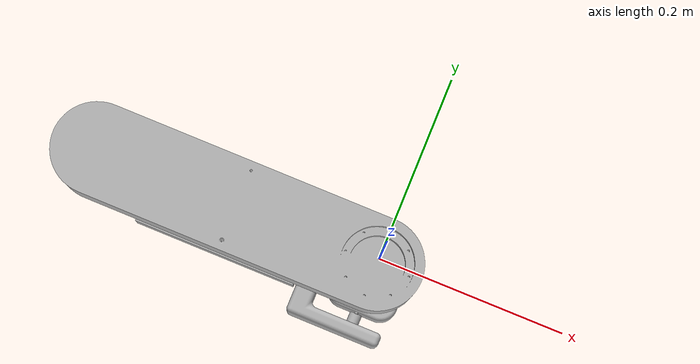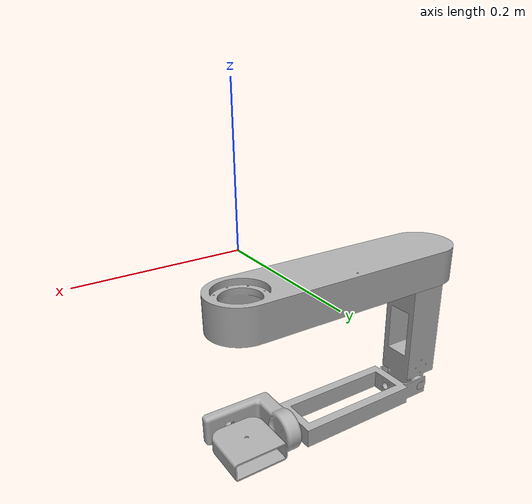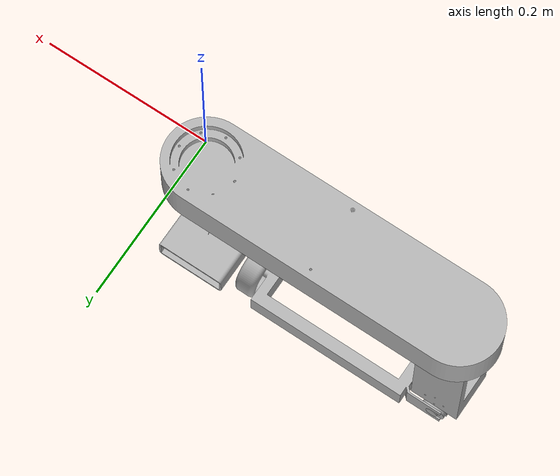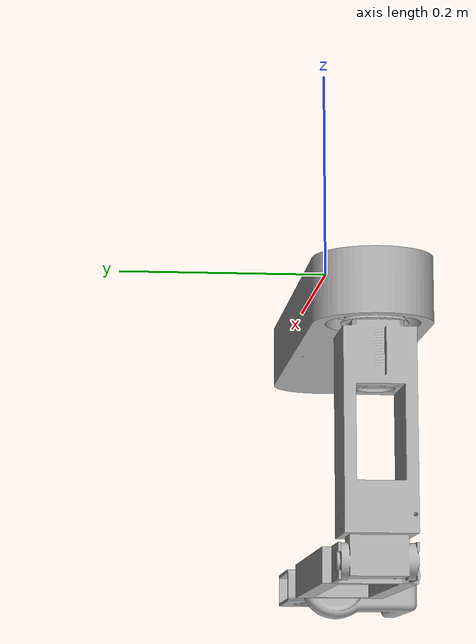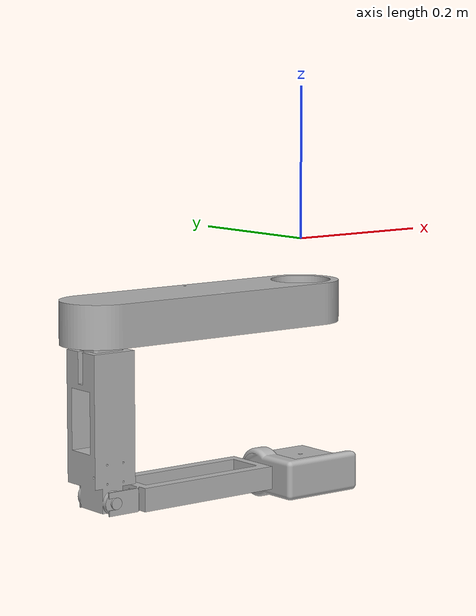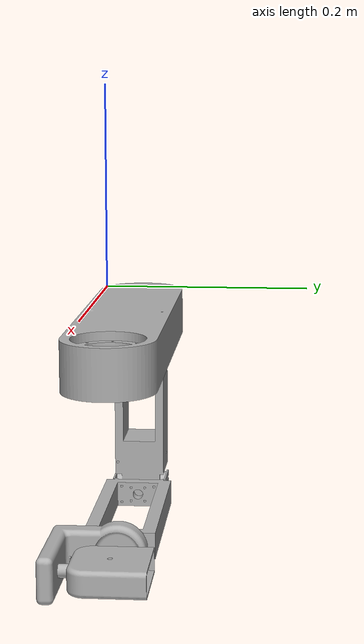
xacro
<?xml version="1.0"?>
<robot xmlns:xacro="http://www.ros.org/wiki/xacro" name="surg_bot">
    <xacro:arg name="initial_positions_file" default="initial_positions.yaml" />

    <!-- Import surg_bot urdf file -->
    <xacro:include filename="$(find surg_bot_description)/urdf/surg_bot.xacro" />

    <!-- Import control_xacro -->
    <xacro:include filename="surg_bot.ros2_control.xacro" />

    <xacro:surg_bot_ros2_control name="FakeSystem" initial_positions_file="$(arg initial_positions_file)"/>

</robot>

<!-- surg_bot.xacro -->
<robot name="surg_bot" xmlns:xacro="http://www.ros.org/wiki/xacro">

<xacro:include filename="$(find surg_bot_description)/urdf/materials.xacro" />
<xacro:include filename="$(find surg_bot_description)/urdf/surg_bot.trans" />
<xacro:include filename="$(find surg_bot_description)/urdf/surg_bot.gazebo" />
<link name="base_link">
  <inertial>
    <origin xyz="-4.031295976229773e-05 2.551630137478745e-06 -0.02955399218078996" rpy="0 0 0"/>
    <mass value="0.4069489619511855"/>
    <inertia ixx="0.000314" iyy="0.000315" izz="0.000167" ixy="-0.0" iyz="0.0" ixz="0.0"/>
  </inertial>
  <visual>
    <origin xyz="0 0 0" rpy="0 0 0"/>
    <geometry>
      <mesh filename="file://$(find surg_bot_description)/meshes/base_link.stl" scale="0.001 0.001 0.001"/>
    </geometry>
    <material name="silver"/>
  </visual>
  <collision>
    <origin xyz="0 0 0" rpy="0 0 0"/>
    <geometry>
      <mesh filename="file://$(find surg_bot_description)/meshes/base_link.stl" scale="0.001 0.001 0.001"/>
    </geometry>
  </collision>
</link>

<link name="link1_1_1">
  <inertial>
    <origin xyz="-0.16001007717101143 -1.5433885540422345e-05 -0.01760775000004948" rpy="0 0 0"/>
    <mass value="8.367890341080868"/>
    <inertia ixx="0.012225" iyy="0.118361" izz="0.124365" ixy="0.0" iyz="0.0" ixz="0.001924"/>
  </inertial>
  <visual>
    <origin xyz="1e-05 -1e-05 0.063784" rpy="0 0 0"/>
    <geometry>
      <mesh filename="file://$(find surg_bot_description)/meshes/link1_1_1.stl" scale="0.001 0.001 0.001"/>
    </geometry>
    <material name="silver"/>
  </visual>
  <collision>
    <origin xyz="1e-05 -1e-05 0.063784" rpy="0 0 0"/>
    <geometry>
      <mesh filename="file://$(find surg_bot_description)/meshes/link1_1_1.stl" scale="0.001 0.001 0.001"/>
    </geometry>
  </collision>
</link>

<link name="link2_1_1">
  <inertial>
    <origin xyz="0.00022227782028544363 2.474064107253927e-05 -0.1173741177356839" rpy="0 0 0"/>
    <mass value="3.3490679501648595"/>
    <inertia ixx="0.014417" iyy="0.014057" izz="0.002264" ixy="-1e-06" iyz="8e-06" ixz="-5.7e-05"/>
  </inertial>
  <visual>
    <origin xyz="0.32003 -1e-05 0.099" rpy="0 0 0"/>
    <geometry>
      <mesh filename="file://$(find surg_bot_description)/meshes/link2_1_1.stl" scale="0.001 0.001 0.001"/>
    </geometry>
    <material name="silver"/>
  </visual>
  <collision>
    <origin xyz="0.32003 -1e-05 0.099" rpy="0 0 0"/>
    <geometry>
      <mesh filename="file://$(find surg_bot_description)/meshes/link2_1_1.stl" scale="0.001 0.001 0.001"/>
    </geometry>
  </collision>
</link>

<link name="link3_1">
  <inertial>
    <origin xyz="0.13545922670739144 0.030192910577609006 0.00044866468088849976" rpy="0 0 0"/>
    <mass value="1.7602626049739658"/>
    <inertia ixx="0.001766" iyy="0.008244" izz="0.009744" ixy="2.4e-05" iyz="0.0" ixz="-2.6e-05"/>
  </inertial>
  <visual>
    <origin xyz="0.320135 0.0306 0.303283" rpy="0 0 0"/>
    <geometry>
      <mesh filename="file://$(find surg_bot_description)/meshes/link3_1.stl" scale="0.001 0.001 0.001"/>
    </geometry>
    <material name="silver"/>
  </visual>
  <collision>
    <origin xyz="0.320135 0.0306 0.303283" rpy="0 0 0"/>
    <geometry>
      <mesh filename="file://$(find surg_bot_description)/meshes/link3_1.stl" scale="0.001 0.001 0.001"/>
    </geometry>
  </collision>
</link>

<link name="link4_1">
  <inertial>
    <origin xyz="0.02605773282976529 -0.04507242712799745 8.675535075214347e-05" rpy="0 0 0"/>
    <mass value="1.4039319321687402"/>
    <inertia ixx="0.001418" iyy="0.001888" izz="0.002652" ixy="0.000674" iyz="2e-06" ixz="-4e-06"/>
  </inertial>
  <visual>
    <origin xyz="0.065319 0.000859 0.302438" rpy="0 0 0"/>
    <geometry>
      <mesh filename="file://$(find surg_bot_description)/meshes/link4_1.stl" scale="0.001 0.001 0.001"/>
    </geometry>
    <material name="silver"/>
  </visual>
  <collision>
    <origin xyz="0.065319 0.000859 0.302438" rpy="0 0 0"/>
    <geometry>
      <mesh filename="file://$(find surg_bot_description)/meshes/link4_1.stl" scale="0.001 0.001 0.001"/>
    </geometry>
  </collision>
</link>

<link name="link5_1_1">
  <inertial>
    <origin xyz="0.0001801099222721872 0.03886369124244137 0.0005895595584266555" rpy="0 0 0"/>
    <mass value="0.38469776659589416"/>
    <inertia ixx="0.000309" iyy="0.000348" izz="0.00055" ixy="0.0" iyz="-1e-06" ixz="0.0"/>
  </inertial>
  <visual>
    <origin xyz="0.000228 0.042975 0.302222" rpy="0 0 0"/>
    <geometry>
      <mesh filename="file://$(find surg_bot_description)/meshes/link5_1_1.stl" scale="0.001 0.001 0.001"/>
    </geometry>
    <material name="silver"/>
  </visual>
  <collision>
    <origin xyz="0.000228 0.042975 0.302222" rpy="0 0 0"/>
    <geometry>
      <mesh filename="file://$(find surg_bot_description)/meshes/link5_1_1.stl" scale="0.001 0.001 0.001"/>
    </geometry>
  </collision>
</link>

<link name="end_effector_1_1">
  <inertial>
    <origin xyz="4.038171408361996e-07 9.114467316127806e-08 0.0025003140135481106" rpy="0 0 0"/>
    <mass value="0.001098697673021953"/>
    <inertia ixx="0.0" iyy="0.0" izz="0.0" ixy="0.0" iyz="-0.0" ixz="-0.0"/>
  </inertial>
  <visual>
    <origin xyz="7.2e-05 0.001625 0.316972" rpy="0 0 0"/>
    <geometry>
      <mesh filename="file://$(find surg_bot_description)/meshes/end_effector_1_1.stl" scale="0.001 0.001 0.001"/>
    </geometry>
    <material name="silver"/>
  </visual>
  <collision>
    <origin xyz="7.2e-05 0.001625 0.316972" rpy="0 0 0"/>
    <geometry>
      <mesh filename="file://$(find surg_bot_description)/meshes/end_effector_1_1.stl" scale="0.001 0.001 0.001"/>
    </geometry>
  </collision>
</link>

<joint name="joint0" type="revolute">
  <origin xyz="-1e-05 1e-05 -0.063784" rpy="0 0 0"/>
  <parent link="base_link"/>
  <child link="link1_1_1"/>
  <axis xyz="0.0 0.0 1.0"/>
  <limit upper="3.141593" lower="-3.141593" effort="100" velocity="100"/>
</joint>

<joint name="joint1" type="revolute">
  <origin xyz="-0.32002 0.0 -0.035216" rpy="0 0 0"/>
  <parent link="link1_1_1"/>
  <child link="link2_1_1"/>
  <axis xyz="0.0 0.0 1.0"/>
  <limit upper="3.141593" lower="-3.141593" effort="100" velocity="100"/>
</joint>

<joint name="joint2" type="revolute">
  <origin xyz="-0.000105 -0.03061 -0.204283" rpy="0 0 0"/>
  <parent link="link2_1_1"/>
  <child link="link3_1"/>
  <axis xyz="-0.003766 -0.999993 0.0"/>
  <limit upper="0.174533" lower="-1.570796" effort="100" velocity="100"/>
</joint>

<joint name="joint3" type="revolute">
  <origin xyz="0.254816 0.029741 0.000845" rpy="0 0 0"/>
  <parent link="link3_1"/>
  <child link="link4_1"/>
  <axis xyz="0.999987 -0.003766 0.003319"/>
  <limit upper="2.268928" lower="-2.268928" effort="100" velocity="100"/>
</joint>

<joint name="joint4" type="revolute">
  <origin xyz="0.065091 -0.042116 0.000216" rpy="0 0 0"/>
  <parent link="link4_1"/>
  <child link="link5_1_1"/>
  <axis xyz="0.003766 0.999993 1e-06"/>
  <limit upper="2.268928" lower="-2.268928" effort="100" velocity="100"/>
</joint>

<joint name="joint5" type="revolute">
  <origin xyz="0.000156 0.04135 -0.01475" rpy="0 0 0"/>
  <parent link="link5_1_1"/>
  <child link="end_effector_1_1"/>
  <axis xyz="1.9e-05 1e-06 -1.0"/>
  <limit upper="3.141593" lower="-3.141593" effort="100" velocity="100"/>
</joint>

</robot>

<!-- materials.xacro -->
<robot name="surg_bot" xmlns:xacro="http://www.ros.org/wiki/xacro" >

<material name="silver">
  <color rgba="0.700 0.700 0.700 1.000"/>
</material>

</robot>

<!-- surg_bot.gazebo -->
<robot name="surg_bot" xmlns:xacro="http://www.ros.org/wiki/xacro" >

<xacro:property name="body_color" value="Gazebo/Silver" />

<gazebo>
  <plugin name="control" filename="libgazebo_ros_control.so"/>
</gazebo>
<gazebo reference="base_link">
  <material>${body_color}</material>
  <mu1>0.2</mu1>
  <mu2>0.2</mu2>
  <self_collide>true</self_collide>
  <gravity>true</gravity>
</gazebo>

<gazebo reference="link1_1_1">
  <material>${body_color}</material>
  <mu1>0.2</mu1>
  <mu2>0.2</mu2>
  <self_collide>true</self_collide>
</gazebo>

<gazebo reference="link2_1_1">
  <material>${body_color}</material>
  <mu1>0.2</mu1>
  <mu2>0.2</mu2>
  <self_collide>true</self_collide>
</gazebo>

<gazebo reference="link3_1">
  <material>${body_color}</material>
  <mu1>0.2</mu1>
  <mu2>0.2</mu2>
  <self_collide>true</self_collide>
</gazebo>

<gazebo reference="link4_1">
  <material>${body_color}</material>
  <mu1>0.2</mu1>
  <mu2>0.2</mu2>
  <self_collide>true</self_collide>
</gazebo>

<gazebo reference="link5_1_1">
  <material>${body_color}</material>
  <mu1>0.2</mu1>
  <mu2>0.2</mu2>
  <self_collide>true</self_collide>
</gazebo>

<gazebo reference="end_effector_1_1">
  <material>${body_color}</material>
  <mu1>0.2</mu1>
  <mu2>0.2</mu2>
  <self_collide>true</self_collide>
</gazebo>

</robot>
